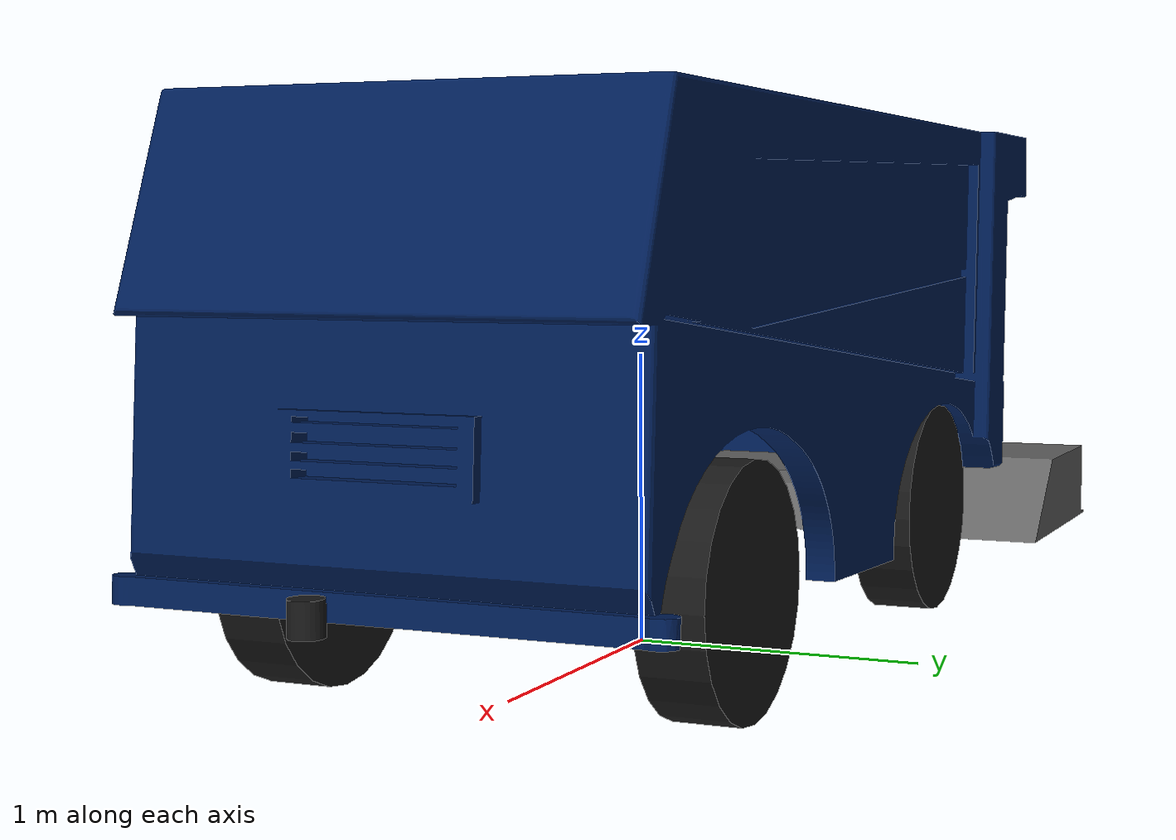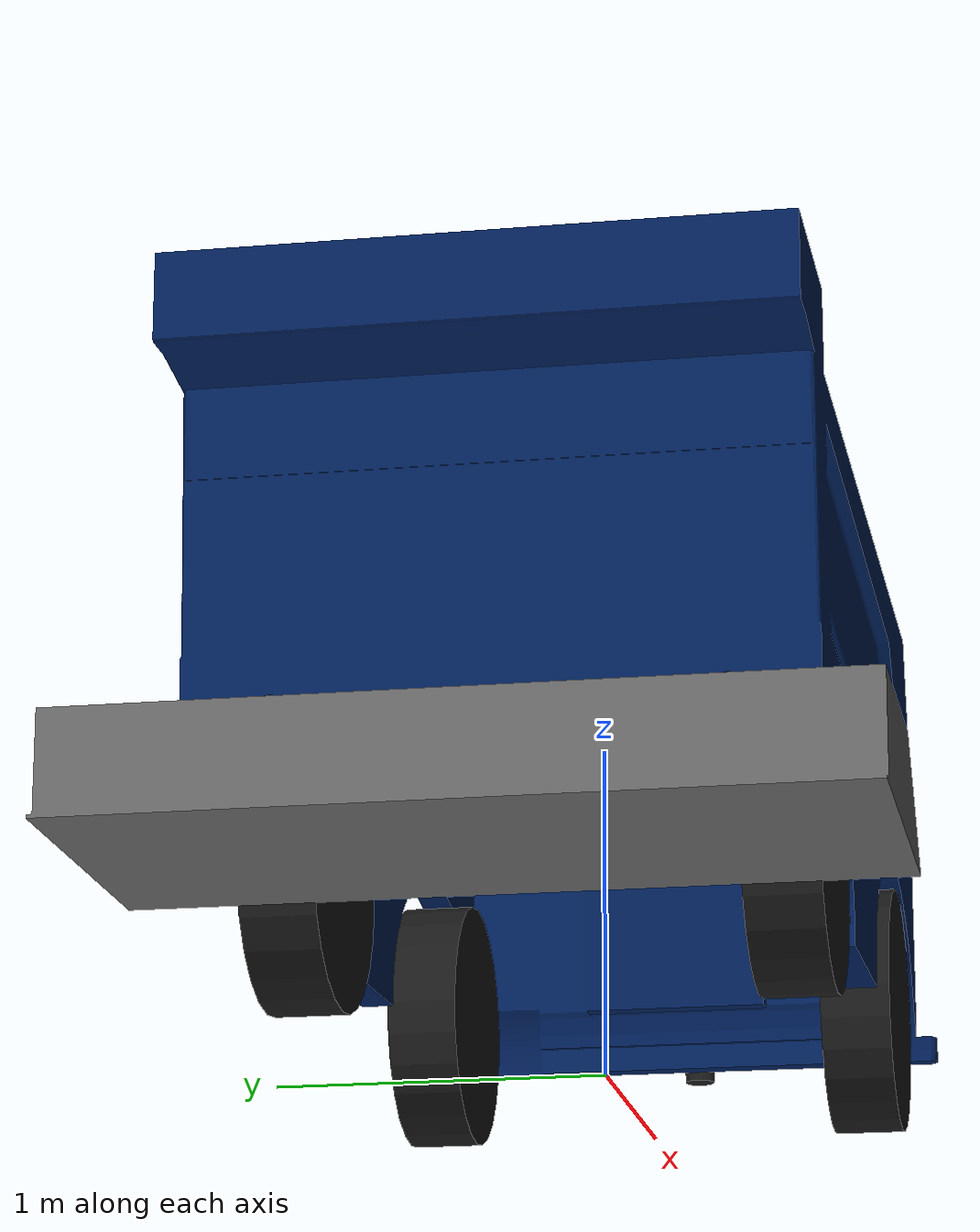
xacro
<?xml version="1.0"?>
<robot name="ice_resurfacer" xmlns:xacro="http://ros.org/wiki/xacro">

  <xacro:property name="chassis_len" value="4.04"/>
  <xacro:property name="chassis_width" value="1.585"/> <xacro:property name="chassis_height" value="2.0"/>   <xacro:property name="chassis_mass" value="3143.0"/>  <xacro:property name="wheel_radius" value="0.386"/>
  <xacro:property name="wheel_width" value="0.215"/>
  <xacro:property name="wheel_mass" value="50.0"/>

  <xacro:property name="wheel_base_x" value="0.98"/>
  <xacro:property name="wheel_sep_y" value="0.685"/>

  <xacro:property name="cond_width" value="2.13"/>
  <xacro:property name="cond_len" value="0.75"/>
  <!-- NOTE THAT STL LENGTH IS 0.90 -->
  <xacro:property name="cond_height" value="0.3"/>

  <xacro:property name="ground_clearance" value="0.25"/>

  <xacro:macro name="box_inertia" params="m w h d">
    <inertial>
      <mass value="${m}"/>
      <inertia ixx="${(m/12) * (h*h + d*d)}" ixy="0.0" ixz="0.0"
               iyy="${(m/12) * (w*w + d*d)}" iyz="0.0"
               izz="${(m/12) * (w*w + h*h)}"/>
    </inertial>
  </xacro:macro>

  <xacro:macro name="cylinder_inertia" params="m r h">
    <inertial>
      <mass value="${m}"/>
      <inertia ixx="${(m/12) * (3*r*r + h*h)}" ixy="0" ixz="0"
               iyy="${(m/12) * (3*r*r + h*h)}" iyz="0"
               izz="${(m/2) * (r*r)}"/>
    </inertial>
  </xacro:macro>

  <link name="base_footprint"/>
  <joint name="base_footprint_joint" type="fixed">
    <parent link="base_footprint"/>
    <child link="base_link"/>
    <!-- Pushes the entire robot body UP 1.5 meters from the floor -->
    <origin xyz="0 0 1.25" rpy="0 0 0"/>
  </joint>

  <link name="base_link">
    <visual>
      <origin xyz="-0.2 0.95 0.575" rpy="3.14159 0 0"/>
      <geometry>
        <mesh filename="package://ice_resurfacer_description/meshes/Zamboni_body.stl" scale="0.03 0.020 0.025"/>
      </geometry>
      <material name="blue">
        <color rgba="0.0 0.12 0.35 1.0"/>
      </material>
    </visual>

    <collision>
      <origin xyz="0 0 0.3" rpy="0 0 0"/>
      <geometry>
        <box size="${chassis_len} ${chassis_width} ${chassis_height - 0.6}"/>
      </geometry>
    </collision>
    <xacro:box_inertia m="${chassis_mass}" w="${chassis_len}" h="${chassis_height}" d="${chassis_width}"/>
  </link>

  <xacro:macro name="rear_wheel" params="prefix reflect">
    <link name="${prefix}_wheel">
      <visual>
        <geometry>
          <cylinder radius="${wheel_radius}" length="${wheel_width}"/>
        </geometry>
        <material name="black">
          <color rgba="0.1 0.1 0.1 1"/>
        </material>
      </visual>
      <collision>
        <geometry>
          <cylinder radius="${wheel_radius}" length="${wheel_width}"/>
        </geometry>
      </collision>
      <xacro:cylinder_inertia m="${wheel_mass}" r="${wheel_radius}" h="${wheel_width}"/>
    </link>

    <joint name="${prefix}_wheel_joint" type="continuous">
      <parent link="base_link"/>
      <child link="${prefix}_wheel"/>
      <origin xyz="${-wheel_base_x} ${reflect * wheel_sep_y} ${wheel_radius - (ground_clearance + chassis_height/2)}" rpy="${-pi/2} 0 0"/>
      <axis xyz="0 0 1"/>
    </joint>
  </xacro:macro>

  <xacro:rear_wheel prefix="rear_left" reflect="1"/>
  <xacro:rear_wheel prefix="rear_right" reflect="-1"/>

  <xacro:macro name="front_steering" params="prefix reflect">
    <link name="${prefix}_steering_link">
      <inertial>
        <mass value="100.0"/>
        <inertia ixx="1.0" ixy="0" ixz="0" iyy="0.01" iyz="0" izz="1.0"/>
      </inertial>
    </link>

    <joint name="${prefix}_steering_joint" type="revolute">
      <parent link="base_link"/>
      <child link="${prefix}_steering_link"/>
      <origin xyz="${wheel_base_x} ${reflect * wheel_sep_y} ${wheel_radius - (ground_clearance + chassis_height/2)}" rpy="0 0 0"/>
      <axis xyz="0 0 1"/>
      <limit lower="-0.6" upper="0.6" effort="50000" velocity="1.0"/>
    </joint>

    <link name="${prefix}_wheel">
      <visual>
        <geometry>
          <cylinder radius="${wheel_radius}" length="${wheel_width}"/>
        </geometry>
        <material name="black"/>
      </visual>
      <collision>
        <geometry>
          <cylinder radius="${wheel_radius}" length="${wheel_width}"/>
        </geometry>
      </collision>
      <xacro:cylinder_inertia m="${wheel_mass}" r="${wheel_radius}" h="${wheel_width}"/>
    </link>

    <joint name="${prefix}_wheel_joint" type="continuous">
      <parent link="${prefix}_steering_link"/>
      <child link="${prefix}_wheel"/>
      <origin xyz="0 0 0" rpy="${-pi/2} 0 0"/>
      <axis xyz="0 0 1"/>
    </joint>
  </xacro:macro>

  <xacro:front_steering prefix="front_left" reflect="1"/>
  <xacro:front_steering prefix="front_right" reflect="-1"/>

  <link name="conditioner_link">
    <visual>
      <origin xyz="-0.25 0.0 -0.15" rpy="0 0 1.5708"/>
      <geometry>
        <mesh filename="package://ice_resurfacer_description/meshes/Conditioner.stl" scale="1.0 1.0 1.0"/>
      </geometry>
      <material name="grey">
        <color rgba="0.4 0.4 0.4 1.0"/>
      </material>
    </visual>

    <collision>
      <origin xyz="0 0 0" rpy="0 0 0"/>
      <geometry>
        <box size="${cond_len} ${cond_width} ${cond_height}"/>
      </geometry>
    </collision>

    <xacro:box_inertia m="10" w="${cond_len}" h="${cond_height}" d="${cond_width}"/>
  </link>

  <joint name="conditioner_joint" type="prismatic">
    <parent link="base_link"/>
    <child link="conditioner_link"/>

    <origin xyz="${-chassis_len/2 - 0.05} 0 ${-(chassis_height/2) + 0.1}" rpy="0 0 0"/>

    <axis xyz="0 0 -1"/>
    <limit lower="0.0" upper="0.5" effort="10000" velocity="0.5"/>
    <dynamics damping="50.0" friction="50.0"/>
  </joint>

  <link name="horizontal_auger_link">
    <xacro:cylinder_inertia m="15.0" r="0.12" h="2.0"/>
  </link>

  <joint name="horizontal_auger_joint" type="continuous">
    <parent link="conditioner_link"/>
    <child link="horizontal_auger_link"/>
    <origin xyz="0.2 0 -0.1" rpy="0 1.5708 0"/>
    <axis xyz="0 0 1"/> <dynamics damping="5.0" friction="10.0"/>
  </joint>

  <link name="vertical_auger_link">
    <xacro:cylinder_inertia m="10.0" r="0.12" h="1.5"/>
  </link>

  <joint name="vertical_auger_joint" type="continuous">
    <parent link="conditioner_link"/>
    <child link="vertical_auger_link"/>
    <origin xyz="0.3 0 0.5" rpy="0 0.3 0"/>
    <axis xyz="0 0 1"/>
    <dynamics damping="5.0" friction="10.0"/>
  </joint>

  <link name="water_valve_link">
    <inertial>
      <mass value="0.1"/>
      <inertia ixx="0.001" ixy="0" ixz="0" iyy="0.001" iyz="0" izz="0.001"/>
    </inertial>
  </link>

  <joint name="water_valve_joint" type="revolute">
    <parent link="conditioner_link"/>
    <child link="water_valve_link"/>
    <origin xyz="-0.2 0 0" rpy="0 0 0"/>
    <axis xyz="0 1 0"/>
    <limit lower="0.0" upper="1.57" effort="10.0" velocity="2.0"/>
  </joint>

  <link name="imu_link"/>
  <joint name="imu_joint" type="fixed">
    <parent link="base_link"/>
    <child link="imu_link"/>
    <origin xyz="1.5 0 0.8" rpy="0 0 0"/>
  </joint>

  <link name="laser_link">
    <visual>
      <geometry>
        <cylinder radius="0.05" length="0.1"/>
      </geometry>
      <material name="black">
        <color rgba="0.1 0.1 0.1 1"/>
      </material>
    </visual>
    <collision>
      <geometry>
        <cylinder radius="0.05" length="0.1"/>
      </geometry>
    </collision>
    <xacro:cylinder_inertia m="1.0" r="0.05" h="0.1"/>
  </link>

  <joint name="laser_joint" type="fixed">
    <parent link="base_link"/>
    <child link="laser_link"/>
    <origin xyz="${chassis_len/2 + 0.05} 0 ${-(chassis_height/2) + 0.2}" rpy="0 0 0"/>
  </joint>

  <ros2_control name="GazeboSimSystem" type="system">
    <hardware>
      <plugin>gz_ros2_control/GazeboSimSystem</plugin>
    </hardware>

    <joint name="rear_left_wheel_joint">
      <command_interface name="velocity">
        <param name="min">-10</param>
        <param name="max">10</param>
      </command_interface>
      <state_interface name="velocity"/>
      <state_interface name="position"/>
    </joint>

    <joint name="rear_right_wheel_joint">
      <command_interface name="velocity">
        <param name="min">-10</param>
        <param name="max">10</param>
      </command_interface>
      <state_interface name="velocity"/>
      <state_interface name="position"/>
    </joint>

    <joint name="front_left_steering_joint">
      <command_interface name="position">
        <param name="min">-0.6</param> <param name="max">0.6</param>
      </command_interface>
      <state_interface name="position"/>
      <state_interface name="velocity"/>
    </joint>

    <joint name="front_right_steering_joint">
      <command_interface name="position">
        <param name="min">-0.6</param>
        <param name="max">0.6</param>
      </command_interface>
      <state_interface name="position"/>
      <state_interface name="velocity"/>
    </joint>

    <joint name="front_left_wheel_joint">
      <state_interface name="position"/>
      <state_interface name="velocity"/>
    </joint>

    <joint name="front_right_wheel_joint">
      <state_interface name="position"/>
      <state_interface name="velocity"/>
    </joint>

    <joint name="conditioner_joint">
      <command_interface name="position"/>
      <state_interface name="position">
        <param name="initial_value">0.0</param>
      </state_interface>
      <state_interface name="velocity">
        <param name="initial_value">0.0</param>
      </state_interface>
    </joint>

    <joint name="horizontal_auger_joint">
      <command_interface name="velocity">
        <param name="min">-20.0</param>
        <param name="max">20.0</param>
      </command_interface>
      <state_interface name="velocity"/>
      <state_interface name="position"/>
    </joint>

    <joint name="vertical_auger_joint">
      <command_interface name="velocity">
        <param name="min">-20.0</param>
        <param name="max">20.0</param>
      </command_interface>
      <state_interface name="velocity"/>
      <state_interface name="position"/>
    </joint>

    <joint name="water_valve_joint">
      <command_interface name="position">
        <param name="min">0.0</param>
        <param name="max">1.57</param>
      </command_interface>
      <state_interface name="position">
        <param name="initial_value">0.0</param>
      </state_interface>
    </joint>
  </ros2_control>

  <gazebo reference="base_link">
    <visual>
      <material>
        <ambient>0.0 0.12 0.35 1.0</ambient>
        <diffuse>0.0 0.12 0.35 1.0</diffuse>
        <specular>0.1 0.1 0.1 1.0</specular>

      </material>
      <visibility_flags>1</visibility_flags>
    </visual>
    <mu1>0.2</mu1> <mu2>0.2</mu2>
    <self_collide>false</self_collide>
  </gazebo>

  <gazebo reference="rear_left_wheel">
    <material>Gazebo/DarkGrey</material>
    <mu1>2.0</mu1> <mu2>2.0</mu2>
    <fdir1>1 0 0</fdir1>
    <kp>100000.0</kp> <kd>500.0</kd>
    <minDepth>0.01</minDepth> <maxVel>0.1</maxVel>
  </gazebo>

  <gazebo reference="rear_right_wheel">
    <material>Gazebo/DarkGrey</material>
    <mu1>2.0</mu1> <mu2>2.0</mu2>
    <fdir1>1 0 0</fdir1>
    <kp>100000.0</kp> <kd>500.0</kd>
    <minDepth>0.01</minDepth> <maxVel>0.1</maxVel>
  </gazebo>

  <gazebo reference="front_left_wheel">
    <material>Gazebo/DarkGrey</material>
    <mu1>2.0</mu1> <mu2>2.0</mu2>
    <fdir1>1 0 0</fdir1>
    <kp>100000.0</kp> <kd>500.0</kd>
    <minDepth>0.01</minDepth> <maxVel>0.1</maxVel>
  </gazebo>

  <gazebo reference="front_right_wheel">
    <material>Gazebo/DarkGrey</material>
    <mu1>2.0</mu1> <mu2>2.0</mu2>
    <fdir1>1 0 0</fdir1>
    <kp>100000.0</kp> <kd>500.0</kd>
    <minDepth>0.01</minDepth> <maxVel>0.1</maxVel>
  </gazebo>

  <gazebo reference="conditioner_link">
    <material>Gazebo/Grey</material>
  </gazebo>

  <gazebo>
    <plugin filename="libgz_ros2_control-system.so" name="gz_ros2_control::GazeboSimROS2ControlPlugin">
      <parameters>$(find ice_resurfacer_description)/config/controllers.yaml</parameters>
    </plugin>
  </gazebo>

  <gazebo reference="imu_link">
    <sensor name="imu_sensor" type="imu">
      <always_on>true</always_on>
      <update_rate>100</update_rate>
      <visualize>true</visualize>
      <topic>imu</topic>
    </sensor>
  </gazebo>

  <gazebo reference="laser_link">
    <sensor name="lidar" type="gpu_lidar">
      <always_on>true</always_on>
      <visualize>true</visualize>
      <update_rate>1</update_rate>
      <topic>scan</topic>
      <gz_frame_id>laser_link</gz_frame_id>

      <visibility_mask>4294967294</visibility_mask>

      <ray>
        <scan>
          <horizontal>
            <!-- 270 degree FOV -->
            <samples>60</samples>
            <resolution>1.0</resolution>
            <min_angle>-2.35619</min_angle>
            <max_angle>2.35619</max_angle>
          </horizontal>
        </scan>
        <range>
          <min>0.4</min>
          <max>40.0</max>
          <resolution>0.01</resolution>
        </range>
      </ray>
    </sensor>
</gazebo>

  <gazebo>
    <plugin filename="gz-sim-odometry-publisher-system" name="gz::sim::systems::OdometryPublisher">
      <odom_frame>odom</odom_frame>
      <robot_base_frame>base_link</robot_base_frame>
      <odom_publish_frequency>50</odom_publish_frequency>
    </plugin>
  </gazebo>

</robot>
